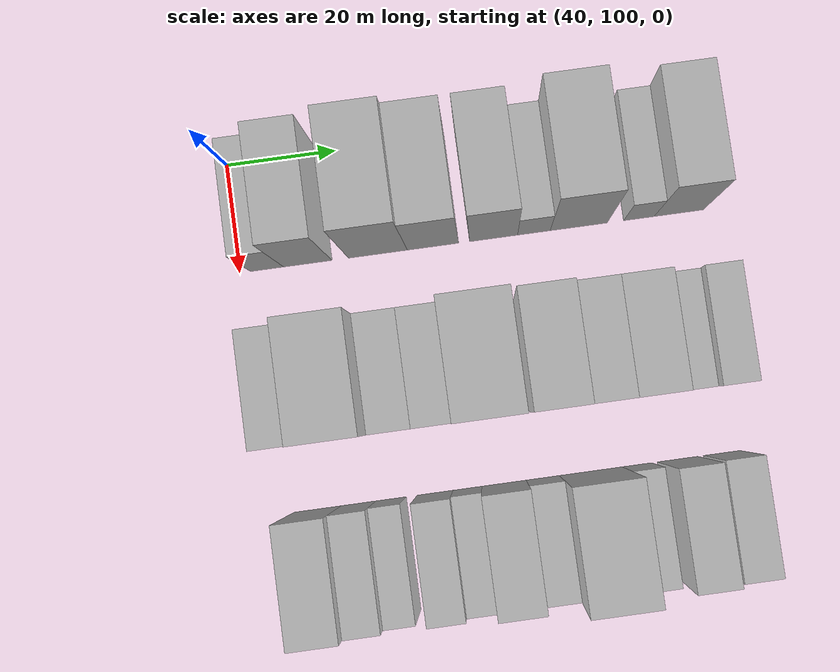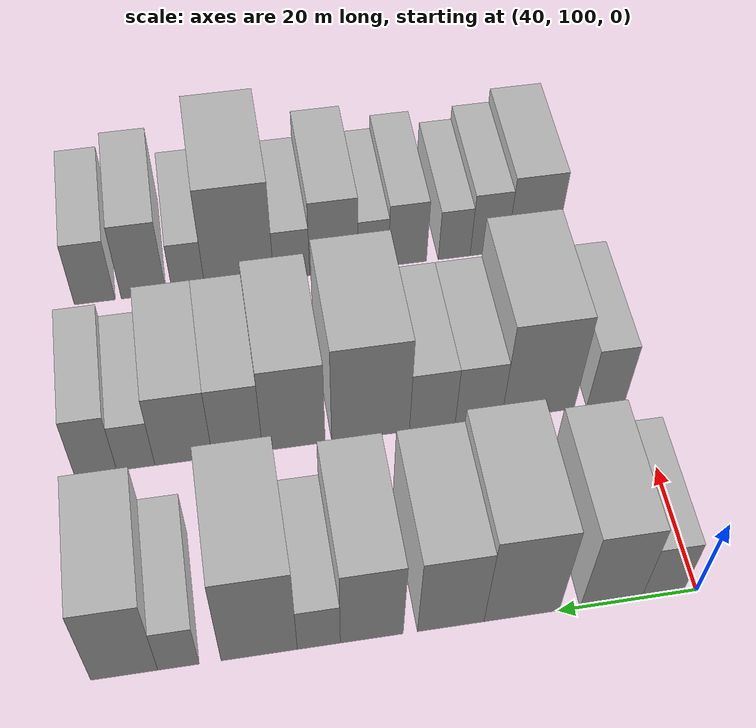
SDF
<sdf version="1.6">
 <world name="default">
  <model name="building_50">
   <static>1</static>
   <pose>50.0000 105.0200 0 0.000000 0.000000 0.000000</pose>
   <link name="link">
    <pose>0 0 7.50 0 0 0</pose>
    <collision name="collision"><geometry><box><size>20.0000 6.0358 15.0000</size></box></geometry></collision>
    <visual name="visual">
     <cast_shadows>0</cast_shadows>
     <geometry><box><size>20.0000 6.0358 15.0000</size></box></geometry>
     <material>
      <script>
       <uri>model://HANNAS_wall/materials/scripts</uri>
       <uri>model://HANNAS_wall/materials/textures</uri>
       <name>vrc/HANNAS_wall</name>
      </script>
     </material>
    </visual>
   </link>
  </model>
  <model name="building_51">
   <static>1</static>
   <pose>50.0000 112.4565 0 0.000000 0.000000 0.000000</pose>
   <link name="link">
    <pose>0 0 10.50 0 0 0</pose>
    <collision name="collision"><geometry><box><size>20.0000 8.8372 21.0000</size></box></geometry></collision>
    <visual name="visual">
     <cast_shadows>0</cast_shadows>
     <geometry><box><size>20.0000 8.8372 21.0000</size></box></geometry>
     <material>
      <script>
       <uri>model://HANNAS_wall/materials/scripts</uri>
       <uri>model://HANNAS_wall/materials/textures</uri>
       <name>vrc/HANNAS_wall</name>
      </script>
     </material>
    </visual>
   </link>
  </model>
  <model name="building_52">
   <static>1</static>
   <pose>50.0000 125.2508 0 0.000000 0.000000 0.000000</pose>
   <link name="link">
    <pose>0 0 12.00 0 0 0</pose>
    <collision name="collision"><geometry><box><size>20.0000 10.7513 24.0000</size></box></geometry></collision>
    <visual name="visual">
     <cast_shadows>0</cast_shadows>
     <geometry><box><size>20.0000 10.7513 24.0000</size></box></geometry>
     <material>
      <script>
       <uri>model://HANNAS_wall/materials/scripts</uri>
       <uri>model://HANNAS_wall/materials/textures</uri>
       <name>vrc/HANNAS_wall</name>
      </script>
     </material>
    </visual>
   </link>
  </model>
  <model name="building_53">
   <static>1</static>
   <pose>50.0000 135.3227 0 0.000000 0.000000 0.000000</pose>
   <link name="link">
    <pose>0 0 10.50 0 0 0</pose>
    <collision name="collision"><geometry><box><size>20.0000 9.3926 21.0000</size></box></geometry></collision>
    <visual name="visual">
     <cast_shadows>0</cast_shadows>
     <geometry><box><size>20.0000 9.3926 21.0000</size></box></geometry>
     <material>
      <script>
       <uri>model://HANNAS_wall/materials/scripts</uri>
       <uri>model://HANNAS_wall/materials/textures</uri>
       <name>vrc/HANNAS_wall</name>
      </script>
     </material>
    </visual>
   </link>
  </model>
  <model name="building_54">
   <static>1</static>
   <pose>50.0000 146.4095 0 0.000000 0.000000 0.000000</pose>
   <link name="link">
    <pose>0 0 10.50 0 0 0</pose>
    <collision name="collision"><geometry><box><size>20.0000 8.7809 21.0000</size></box></geometry></collision>
    <visual name="visual">
     <cast_shadows>0</cast_shadows>
     <geometry><box><size>20.0000 8.7809 21.0000</size></box></geometry>
     <material>
      <script>
       <uri>model://HANNAS_wall/materials/scripts</uri>
       <uri>model://HANNAS_wall/materials/textures</uri>
       <name>vrc/HANNAS_wall</name>
      </script>
     </material>
    </visual>
   </link>
  </model>
  <model name="building_55">
   <static>1</static>
   <pose>50.0000 153.7830 0 0.000000 0.000000 0.000000</pose>
   <link name="link">
    <pose>0 0 6.00 0 0 0</pose>
    <collision name="collision"><geometry><box><size>20.0000 5.9661 12.0000</size></box></geometry></collision>
    <visual name="visual">
     <cast_shadows>0</cast_shadows>
     <geometry><box><size>20.0000 5.9661 12.0000</size></box></geometry>
     <material>
      <script>
       <uri>model://HANNAS_wall/materials/scripts</uri>
       <uri>model://HANNAS_wall/materials/textures</uri>
       <name>vrc/HANNAS_wall</name>
      </script>
     </material>
    </visual>
   </link>
  </model>
  <model name="building_56">
   <static>1</static>
   <pose>50.0000 162.0138 0 0.000000 0.000000 0.000000</pose>
   <link name="link">
    <pose>0 0 12.00 0 0 0</pose>
    <collision name="collision"><geometry><box><size>20.0000 10.4956 24.0000</size></box></geometry></collision>
    <visual name="visual">
     <cast_shadows>0</cast_shadows>
     <geometry><box><size>20.0000 10.4956 24.0000</size></box></geometry>
     <material>
      <script>
       <uri>model://HANNAS_wall/materials/scripts</uri>
       <uri>model://HANNAS_wall/materials/textures</uri>
       <name>vrc/HANNAS_wall</name>
      </script>
     </material>
    </visual>
   </link>
  </model>
  <model name="building_57">
   <static>1</static>
   <pose>50.0000 173.0753 0 0.000000 0.000000 0.000000</pose>
   <link name="link">
    <pose>0 0 6.00 0 0 0</pose>
    <collision name="collision"><geometry><box><size>20.0000 5.6274 12.0000</size></box></geometry></collision>
    <visual name="visual">
     <cast_shadows>0</cast_shadows>
     <geometry><box><size>20.0000 5.6274 12.0000</size></box></geometry>
     <material>
      <script>
       <uri>model://HANNAS_wall/materials/scripts</uri>
       <uri>model://HANNAS_wall/materials/textures</uri>
       <name>vrc/HANNAS_wall</name>
      </script>
     </material>
    </visual>
   </link>
  </model>
  <model name="building_58">
   <static>1</static>
   <pose>50.0000 180.4229 0 0.000000 0.000000 0.000000</pose>
   <link name="link">
    <pose>0 0 10.50 0 0 0</pose>
    <collision name="collision"><geometry><box><size>20.0000 9.0678 21.0000</size></box></geometry></collision>
    <visual name="visual">
     <cast_shadows>0</cast_shadows>
     <geometry><box><size>20.0000 9.0678 21.0000</size></box></geometry>
     <material>
      <script>
       <uri>model://HANNAS_wall/materials/scripts</uri>
       <uri>model://HANNAS_wall/materials/textures</uri>
       <name>vrc/HANNAS_wall</name>
      </script>
     </material>
    </visual>
   </link>
  </model>
  <model name="building_128">
   <static>1</static>
   <pose>82.0000 104.5471 0 0.000000 0.000000 0.000000</pose>
   <link name="link">
    <pose>0 0 7.50 0 0 0</pose>
    <collision name="collision"><geometry><box><size>20.0000 6.0499 15.0000</size></box></geometry></collision>
    <visual name="visual">
     <cast_shadows>0</cast_shadows>
     <geometry><box><size>20.0000 6.0499 15.0000</size></box></geometry>
     <material>
      <script>
       <uri>model://HANNAS_wall/materials/scripts</uri>
       <uri>model://HANNAS_wall/materials/textures</uri>
       <name>vrc/HANNAS_wall</name>
      </script>
     </material>
    </visual>
   </link>
  </model>
  <model name="building_129">
   <static>1</static>
   <pose>82.0000 115.2882 0 0.000000 0.000000 0.000000</pose>
   <link name="link">
    <pose>0 0 12.00 0 0 0</pose>
    <collision name="collision"><geometry><box><size>20.0000 11.4322 24.0000</size></box></geometry></collision>
    <visual name="visual">
     <cast_shadows>0</cast_shadows>
     <geometry><box><size>20.0000 11.4322 24.0000</size></box></geometry>
     <material>
      <script>
       <uri>model://HANNAS_wall/materials/scripts</uri>
       <uri>model://HANNAS_wall/materials/textures</uri>
       <name>vrc/HANNAS_wall</name>
      </script>
     </material>
    </visual>
   </link>
  </model>
  <model name="building_130">
   <static>1</static>
   <pose>82.0000 124.6313 0 0.000000 0.000000 0.000000</pose>
   <link name="link">
    <pose>0 0 7.50 0 0 0</pose>
    <collision name="collision"><geometry><box><size>20.0000 7.2538 15.0000</size></box></geometry></collision>
    <visual name="visual">
     <cast_shadows>0</cast_shadows>
     <geometry><box><size>20.0000 7.2538 15.0000</size></box></geometry>
     <material>
      <script>
       <uri>model://HANNAS_wall/materials/scripts</uri>
       <uri>model://HANNAS_wall/materials/textures</uri>
       <name>vrc/HANNAS_wall</name>
      </script>
     </material>
    </visual>
   </link>
  </model>
  <model name="building_131">
   <static>1</static>
   <pose>82.0000 131.7952 0 0.000000 0.000000 0.000000</pose>
   <link name="link">
    <pose>0 0 7.50 0 0 0</pose>
    <collision name="collision"><geometry><box><size>20.0000 7.0741 15.0000</size></box></geometry></collision>
    <visual name="visual">
     <cast_shadows>0</cast_shadows>
     <geometry><box><size>20.0000 7.0741 15.0000</size></box></geometry>
     <material>
      <script>
       <uri>model://HANNAS_wall/materials/scripts</uri>
       <uri>model://HANNAS_wall/materials/textures</uri>
       <name>vrc/HANNAS_wall</name>
      </script>
     </material>
    </visual>
   </link>
  </model>
  <model name="building_132">
   <static>1</static>
   <pose>82.0000 141.3066 0 0.000000 0.000000 0.000000</pose>
   <link name="link">
    <pose>0 0 12.00 0 0 0</pose>
    <collision name="collision"><geometry><box><size>20.0000 11.9488 24.0000</size></box></geometry></collision>
    <visual name="visual">
     <cast_shadows>0</cast_shadows>
     <geometry><box><size>20.0000 11.9488 24.0000</size></box></geometry>
     <material>
      <script>
       <uri>model://HANNAS_wall/materials/scripts</uri>
       <uri>model://HANNAS_wall/materials/textures</uri>
       <name>vrc/HANNAS_wall</name>
      </script>
     </material>
    </visual>
   </link>
  </model>
  <model name="building_133">
   <static>1</static>
   <pose>82.0000 153.0376 0 0.000000 0.000000 0.000000</pose>
   <link name="link">
    <pose>0 0 10.50 0 0 0</pose>
    <collision name="collision"><geometry><box><size>20.0000 9.5131 21.0000</size></box></geometry></collision>
    <visual name="visual">
     <cast_shadows>0</cast_shadows>
     <geometry><box><size>20.0000 9.5131 21.0000</size></box></geometry>
     <material>
      <script>
       <uri>model://HANNAS_wall/materials/scripts</uri>
       <uri>model://HANNAS_wall/materials/textures</uri>
       <name>vrc/HANNAS_wall</name>
      </script>
     </material>
    </visual>
   </link>
  </model>
  <model name="building_134">
   <static>1</static>
   <pose>82.0000 161.5766 0 0.000000 0.000000 0.000000</pose>
   <link name="link">
    <pose>0 0 9.00 0 0 0</pose>
    <collision name="collision"><geometry><box><size>20.0000 7.5648 18.0000</size></box></geometry></collision>
    <visual name="visual">
     <cast_shadows>0</cast_shadows>
     <geometry><box><size>20.0000 7.5648 18.0000</size></box></geometry>
     <material>
      <script>
       <uri>model://HANNAS_wall/materials/scripts</uri>
       <uri>model://HANNAS_wall/materials/textures</uri>
       <name>vrc/HANNAS_wall</name>
      </script>
     </material>
    </visual>
   </link>
  </model>
  <model name="building_135">
   <static>1</static>
   <pose>82.0000 169.6819 0 0.000000 0.000000 0.000000</pose>
   <link name="link">
    <pose>0 0 9.00 0 0 0</pose>
    <collision name="collision"><geometry><box><size>20.0000 8.6458 18.0000</size></box></geometry></collision>
    <visual name="visual">
     <cast_shadows>0</cast_shadows>
     <geometry><box><size>20.0000 8.6458 18.0000</size></box></geometry>
     <material>
      <script>
       <uri>model://HANNAS_wall/materials/scripts</uri>
       <uri>model://HANNAS_wall/materials/textures</uri>
       <name>vrc/HANNAS_wall</name>
      </script>
     </material>
    </visual>
   </link>
  </model>
  <model name="building_136">
   <static>1</static>
   <pose>82.0000 176.8530 0 0.000000 0.000000 0.000000</pose>
   <link name="link">
    <pose>0 0 6.00 0 0 0</pose>
    <collision name="collision"><geometry><box><size>20.0000 5.6965 12.0000</size></box></geometry></collision>
    <visual name="visual">
     <cast_shadows>0</cast_shadows>
     <geometry><box><size>20.0000 5.6965 12.0000</size></box></geometry>
     <material>
      <script>
       <uri>model://HANNAS_wall/materials/scripts</uri>
       <uri>model://HANNAS_wall/materials/textures</uri>
       <name>vrc/HANNAS_wall</name>
      </script>
     </material>
    </visual>
   </link>
  </model>
  <model name="building_137">
   <static>1</static>
   <pose>82.0000 182.8255 0 0.000000 0.000000 0.000000</pose>
   <link name="link">
    <pose>0 0 7.50 0 0 0</pose>
    <collision name="collision"><geometry><box><size>20.0000 6.2484 15.0000</size></box></geometry></collision>
    <visual name="visual">
     <cast_shadows>0</cast_shadows>
     <geometry><box><size>20.0000 6.2484 15.0000</size></box></geometry>
     <material>
      <script>
       <uri>model://HANNAS_wall/materials/scripts</uri>
       <uri>model://HANNAS_wall/materials/textures</uri>
       <name>vrc/HANNAS_wall</name>
      </script>
     </material>
    </visual>
   </link>
  </model>
  <model name="building_209">
   <static>1</static>
   <pose>114.0000 108.7406 0 0.000000 0.000000 0.000000</pose>
   <link name="link">
    <pose>0 0 9.00 0 0 0</pose>
    <collision name="collision"><geometry><box><size>20.0000 8.5113 18.0000</size></box></geometry></collision>
    <visual name="visual">
     <cast_shadows>0</cast_shadows>
     <geometry><box><size>20.0000 8.5113 18.0000</size></box></geometry>
     <material>
      <script>
       <uri>model://HANNAS_wall/materials/scripts</uri>
       <uri>model://HANNAS_wall/materials/textures</uri>
       <name>vrc/HANNAS_wall</name>
      </script>
     </material>
    </visual>
   </link>
  </model>
  <model name="building_210">
   <static>1</static>
   <pose>114.0000 116.1146 0 0.000000 0.000000 0.000000</pose>
   <link name="link">
    <pose>0 0 7.50 0 0 0</pose>
    <collision name="collision"><geometry><box><size>20.0000 6.2369 15.0000</size></box></geometry></collision>
    <visual name="visual">
     <cast_shadows>0</cast_shadows>
     <geometry><box><size>20.0000 6.2369 15.0000</size></box></geometry>
     <material>
      <script>
       <uri>model://HANNAS_wall/materials/scripts</uri>
       <uri>model://HANNAS_wall/materials/textures</uri>
       <name>vrc/HANNAS_wall</name>
      </script>
     </material>
    </visual>
   </link>
  </model>
  <model name="building_211">
   <static>1</static>
   <pose>114.0000 121.9326 0 0.000000 0.000000 0.000000</pose>
   <link name="link">
    <pose>0 0 6.00 0 0 0</pose>
    <collision name="collision"><geometry><box><size>20.0000 5.3991 12.0000</size></box></geometry></collision>
    <visual name="visual">
     <cast_shadows>0</cast_shadows>
     <geometry><box><size>20.0000 5.3991 12.0000</size></box></geometry>
     <material>
      <script>
       <uri>model://HANNAS_wall/materials/scripts</uri>
       <uri>model://HANNAS_wall/materials/textures</uri>
       <name>vrc/HANNAS_wall</name>
      </script>
     </material>
    </visual>
   </link>
  </model>
  <model name="building_212">
   <static>1</static>
   <pose>114.0000 129.8507 0 0.000000 0.000000 0.000000</pose>
   <link name="link">
    <pose>0 0 7.50 0 0 0</pose>
    <collision name="collision"><geometry><box><size>20.0000 6.4370 15.0000</size></box></geometry></collision>
    <visual name="visual">
     <cast_shadows>0</cast_shadows>
     <geometry><box><size>20.0000 6.4370 15.0000</size></box></geometry>
     <material>
      <script>
       <uri>model://HANNAS_wall/materials/scripts</uri>
       <uri>model://HANNAS_wall/materials/textures</uri>
       <name>vrc/HANNAS_wall</name>
      </script>
     </material>
    </visual>
   </link>
  </model>
  <model name="building_213">
   <static>1</static>
   <pose>114.0000 135.6502 0 0.000000 0.000000 0.000000</pose>
   <link name="link">
    <pose>0 0 6.00 0 0 0</pose>
    <collision name="collision"><geometry><box><size>20.0000 5.1621 12.0000</size></box></geometry></collision>
    <visual name="visual">
     <cast_shadows>0</cast_shadows>
     <geometry><box><size>20.0000 5.1621 12.0000</size></box></geometry>
     <material>
      <script>
       <uri>model://HANNAS_wall/materials/scripts</uri>
       <uri>model://HANNAS_wall/materials/textures</uri>
       <name>vrc/HANNAS_wall</name>
      </script>
     </material>
    </visual>
   </link>
  </model>
  <model name="building_214">
   <static>1</static>
   <pose>114.0000 142.2251 0 0.000000 0.000000 0.000000</pose>
   <link name="link">
    <pose>0 0 9.00 0 0 0</pose>
    <collision name="collision"><geometry><box><size>20.0000 7.9878 18.0000</size></box></geometry></collision>
    <visual name="visual">
     <cast_shadows>0</cast_shadows>
     <geometry><box><size>20.0000 7.9878 18.0000</size></box></geometry>
     <material>
      <script>
       <uri>model://HANNAS_wall/materials/scripts</uri>
       <uri>model://HANNAS_wall/materials/textures</uri>
       <name>vrc/HANNAS_wall</name>
      </script>
     </material>
    </visual>
   </link>
  </model>
  <model name="building_215">
   <static>1</static>
   <pose>114.0000 149.2030 0 0.000000 0.000000 0.000000</pose>
   <link name="link">
    <pose>0 0 6.00 0 0 0</pose>
    <collision name="collision"><geometry><box><size>20.0000 5.9680 12.0000</size></box></geometry></collision>
    <visual name="visual">
     <cast_shadows>0</cast_shadows>
     <geometry><box><size>20.0000 5.9680 12.0000</size></box></geometry>
     <material>
      <script>
       <uri>model://HANNAS_wall/materials/scripts</uri>
       <uri>model://HANNAS_wall/materials/textures</uri>
       <name>vrc/HANNAS_wall</name>
      </script>
     </material>
    </visual>
   </link>
  </model>
  <model name="building_216">
   <static>1</static>
   <pose>114.0000 157.8651 0 0.000000 0.000000 0.000000</pose>
   <link name="link">
    <pose>0 0 12.00 0 0 0</pose>
    <collision name="collision"><geometry><box><size>20.0000 11.3562 24.0000</size></box></geometry></collision>
    <visual name="visual">
     <cast_shadows>0</cast_shadows>
     <geometry><box><size>20.0000 11.3562 24.0000</size></box></geometry>
     <material>
      <script>
       <uri>model://HANNAS_wall/materials/scripts</uri>
       <uri>model://HANNAS_wall/materials/textures</uri>
       <name>vrc/HANNAS_wall</name>
      </script>
     </material>
    </visual>
   </link>
  </model>
  <model name="building_217">
   <static>1</static>
   <pose>114.0000 166.2204 0 0.000000 0.000000 0.000000</pose>
   <link name="link">
    <pose>0 0 6.00 0 0 0</pose>
    <collision name="collision"><geometry><box><size>20.0000 5.3546 12.0000</size></box></geometry></collision>
    <visual name="visual">
     <cast_shadows>0</cast_shadows>
     <geometry><box><size>20.0000 5.3546 12.0000</size></box></geometry>
     <material>
      <script>
       <uri>model://HANNAS_wall/materials/scripts</uri>
       <uri>model://HANNAS_wall/materials/textures</uri>
       <name>vrc/HANNAS_wall</name>
      </script>
     </material>
    </visual>
   </link>
  </model>
  <model name="building_218">
   <static>1</static>
   <pose>114.0000 173.5539 0 0.000000 0.000000 0.000000</pose>
   <link name="link">
    <pose>0 0 9.00 0 0 0</pose>
    <collision name="collision"><geometry><box><size>20.0000 7.3123 18.0000</size></box></geometry></collision>
    <visual name="visual">
     <cast_shadows>0</cast_shadows>
     <geometry><box><size>20.0000 7.3123 18.0000</size></box></geometry>
     <material>
      <script>
       <uri>model://HANNAS_wall/materials/scripts</uri>
       <uri>model://HANNAS_wall/materials/textures</uri>
       <name>vrc/HANNAS_wall</name>
      </script>
     </material>
    </visual>
   </link>
  </model>
  <model name="building_219">
   <static>1</static>
   <pose>114.0000 181.5181 0 0.000000 0.000000 0.000000</pose>
   <link name="link">
    <pose>0 0 7.50 0 0 0</pose>
    <collision name="collision"><geometry><box><size>20.0000 6.6161 15.0000</size></box></geometry></collision>
    <visual name="visual">
     <cast_shadows>0</cast_shadows>
     <geometry><box><size>20.0000 6.6161 15.0000</size></box></geometry>
     <material>
      <script>
       <uri>model://HANNAS_wall/materials/scripts</uri>
       <uri>model://HANNAS_wall/materials/textures</uri>
       <name>vrc/HANNAS_wall</name>
      </script>
     </material>
    </visual>
   </link>
  </model>
 </world>
</sdf>
